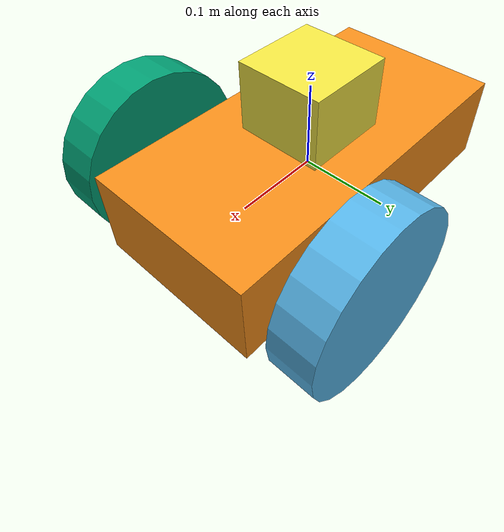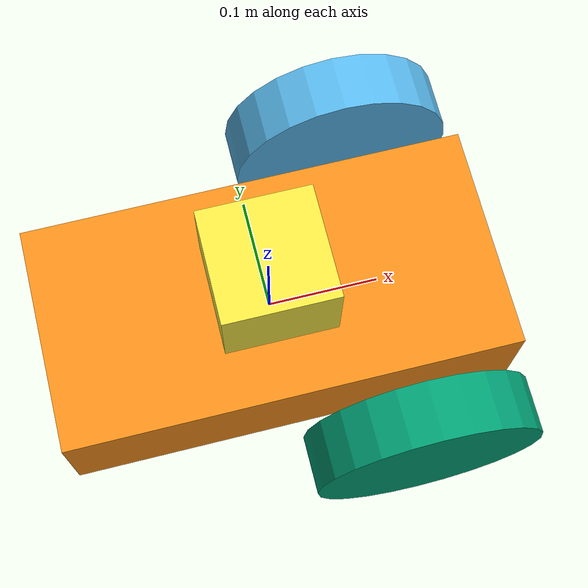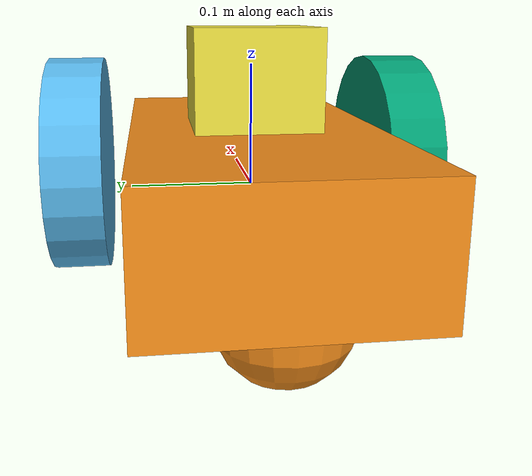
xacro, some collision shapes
<?xml version='1.0'?>

<robot name="robot" xmlns:xacro="http://www.ros.org/wiki/xacro">

  <xacro:include filename="$(find myrobot_description)/urdf/myrobot.gazebo" />
  <xacro:include filename="$(find myrobot_description)/urdf/materials.xacro" />
  <xacro:include filename="$(find myrobot_description)/urdf/macros.xacro" />

  <link name='base_link'>
    <pose>0 0 0.1 0 0 0</pose>

    <inertial>
      <mass value="10.0"/>
      <origin xyz="0.0 0 0.1" rpy=" 0 0 0"/>
      <inertia
          ixx="0.5" ixy="0" ixz="0"
          iyy="1.0" iyz="0"
          izz="0.1"
      />
    </inertial>

    <collision name='collision'>
      <geometry>
        <box size=".4 .2 .1"/>
      </geometry>
    </collision>

    <visual name='chassis_visual'>
      <origin xyz="0 0 0" rpy=" 0 0 0"/>
      <geometry>
        <box size=".4 .2 .1"/>
      </geometry>
    </visual>

    <collision name='caster_collision'>
      <origin xyz="-0.15 0 -0.05" rpy=" 0 0 0"/>
      <geometry>
        <sphere radius="0.05"/>
      </geometry>
      <surface>
        <friction>
          <ode>
            <mu>0</mu>
            <mu2>0</mu2>
            <slip1>1.0</slip1>
            <slip2>1.0</slip2>
          </ode>
        </friction>
      </surface>
    </collision>

    <visual name='caster_visual'>
      <origin xyz="-0.15 0 -0.05" rpy=" 0 0 0"/>
      <geometry>
        <sphere radius="0.05"/>
      </geometry>
    </visual>
  </link>

  <link name="left_wheel">
    <!--origin xyz="0.1 0.13 0.1" rpy="0 1.5707 1.5707"/-->
    <collision name="collision">
      <origin xyz="0 0 0" rpy="0 1.5707 1.5707"/>
      <geometry>
        <cylinder radius="0.1" length="0.05"/>
      </geometry>
    </collision>
    <visual name="left_wheel_visual">
      <origin xyz="0 0 0" rpy="0 1.5707 1.5707"/>
      <geometry>
        <cylinder radius="0.1" length="0.05"/>
      </geometry>
    </visual>
    <inertial>
      <origin xyz="0 0 0" rpy="0 1.5707 1.5707"/>
      <mass value="5"/>
      <cylinder_inertia m="5" r="0.1" h="0.05"/>
      <inertia
        ixx="1.0" ixy="0.0" ixz="0.0"
        iyy="1.0" iyz="0.0"
        izz="1.0"/>
    </inertial>
  </link>

  <link name="right_wheel">
    <!--origin xyz="0.1 -0.13 0.1" rpy="0 1.5707 1.5707"/-->
    <collision name="collision">
      <origin xyz="0 0 0" rpy="0 1.5707 1.5707"/>
      <geometry>
        <cylinder radius="0.1" length="0.05"/>
      </geometry>
    </collision>
    <visual name="right_wheel_visual">
      <origin xyz="0 0 0" rpy="0 1.5707 1.5707"/>
      <geometry>
        <cylinder radius="0.1" length="0.05"/>
      </geometry>
    </visual>
    <inertial>
      <origin xyz="0 0 0" rpy="0 1.5707 1.5707"/>
      <mass value="5"/>
      <cylinder_inertia m="5" r="0.1" h="0.05"/>
      <inertia
        ixx="1.0" ixy="0.0" ixz="0.0"
        iyy="1.0" iyz="0.0"
        izz="1.0"/>
    </inertial>
  </link>

  <joint type="continuous" name="left_wheel_hinge">
    <origin xyz="0.1 0.15 0" rpy="0 0 0"/>
    <child link="left_wheel"/>
    <parent link="base_link"/>
    <axis xyz="0 1 0" rpy="0 0 0"/>
    <limit effort="100" velocity="100"/>
    <joint_properties damping="0.0" friction="0.0"/>
  </joint>

  <joint type="continuous" name="right_wheel_hinge">
    <origin xyz="0.1 -0.15 0" rpy="0 0 0"/>
    <child link="right_wheel"/>
    <parent link="base_link"/>
    <axis xyz="0 1 0" rpy="0 0 0"/>
    <limit effort="100" velocity="100"/>
    <joint_properties damping="0.0" friction="0.0"/>
  </joint>

  <!-- Hokuyo Laser -->

  <joint name="hokuyo_joint" type="fixed">
    <axis xyz="0 1 0" />
    <origin xyz="0 0 0.08" rpy="0 0 3.14"/>
    <parent link="base_link"/>
    <child link="hokuyo_link"/>
  </joint>

  <link name="hokuyo_link">
    <collision>
      <origin xyz="0 0 0" rpy="0 0 0"/>
      <geometry>
    <box size="0.1 0.1 0.1"/>
      </geometry>
    </collision>

    <visual>
      <origin xyz="0 0 0" rpy="0 0 0"/>
      <geometry>
        <mesh filename="package://myrobot_description/hokuyo/meshes/hokuyo.dae"/>
      </geometry>
    </visual>

    <inertial>
      <mass value="1e-5" />
      <origin xyz="0 0 0" rpy="0 0 0"/>
      <inertia ixx="1e-6" ixy="0" ixz="0" iyy="1e-6" iyz="0" izz="1e-6" />
    </inertial>
  </link>

</robot>
